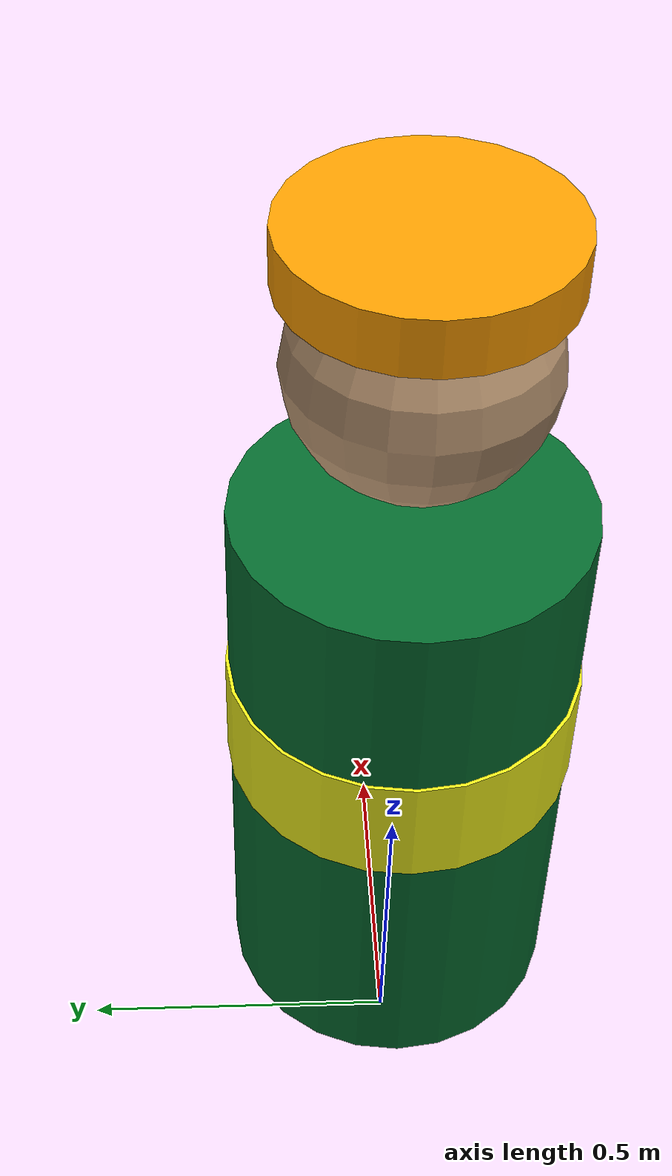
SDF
<?xml version="1.0"?>
<sdf version="1.6">
  <model name="demo_dynamic_worker">
    <pose>0 0 0.05 0 0 0</pose>
    <static>false</static>
    <allow_auto_disable>false</allow_auto_disable>
    <link name="link">
      <gravity>false</gravity>
      <kinematic>true</kinematic>
      <inertial>
        <mass>80</mass>
        <inertia>
          <ixx>8</ixx>
          <ixy>0</ixy>
          <ixz>0</ixz>
          <iyy>8</iyy>
          <iyz>0</iyz>
          <izz>4</izz>
        </inertia>
      </inertial>
      <collision name="collision">
        <pose>0 0 0.72 0 0 0</pose>
        <geometry>
          <cylinder>
            <radius>0.28</radius>
            <length>1.35</length>
          </cylinder>
        </geometry>
      </collision>
      <visual name="body_visual">
        <pose>0 0 0.66 0 0 0</pose>
        <geometry>
          <cylinder>
            <radius>0.25</radius>
            <length>0.92</length>
          </cylinder>
        </geometry>
        <material>
          <ambient>0.02 0.42 0.18 1</ambient>
          <diffuse>0.02 0.42 0.18 1</diffuse>
        </material>
      </visual>
      <visual name="vest_visual">
        <pose>0 0 0.75 0 0 0</pose>
        <geometry>
          <cylinder>
            <radius>0.255</radius>
            <length>0.18</length>
          </cylinder>
        </geometry>
        <material>
          <ambient>0.95 0.95 0.10 1</ambient>
          <diffuse>0.95 0.95 0.10 1</diffuse>
          <emissive>0.35 0.35 0.02 1</emissive>
        </material>
      </visual>
      <visual name="head_visual">
        <pose>0 0 1.36 0 0 0</pose>
        <geometry>
          <sphere>
            <radius>0.18</radius>
          </sphere>
        </geometry>
        <material>
          <ambient>0.72 0.58 0.44 1</ambient>
          <diffuse>0.72 0.58 0.44 1</diffuse>
        </material>
      </visual>
      <visual name="helmet_visual">
        <pose>0 0 1.52 0 0 0</pose>
        <geometry>
          <cylinder>
            <radius>0.19</radius>
            <length>0.08</length>
          </cylinder>
        </geometry>
        <material>
          <ambient>1.0 0.62 0.0 1</ambient>
          <diffuse>1.0 0.62 0.0 1</diffuse>
        </material>
      </visual>
    </link>
  </model>
</sdf>
